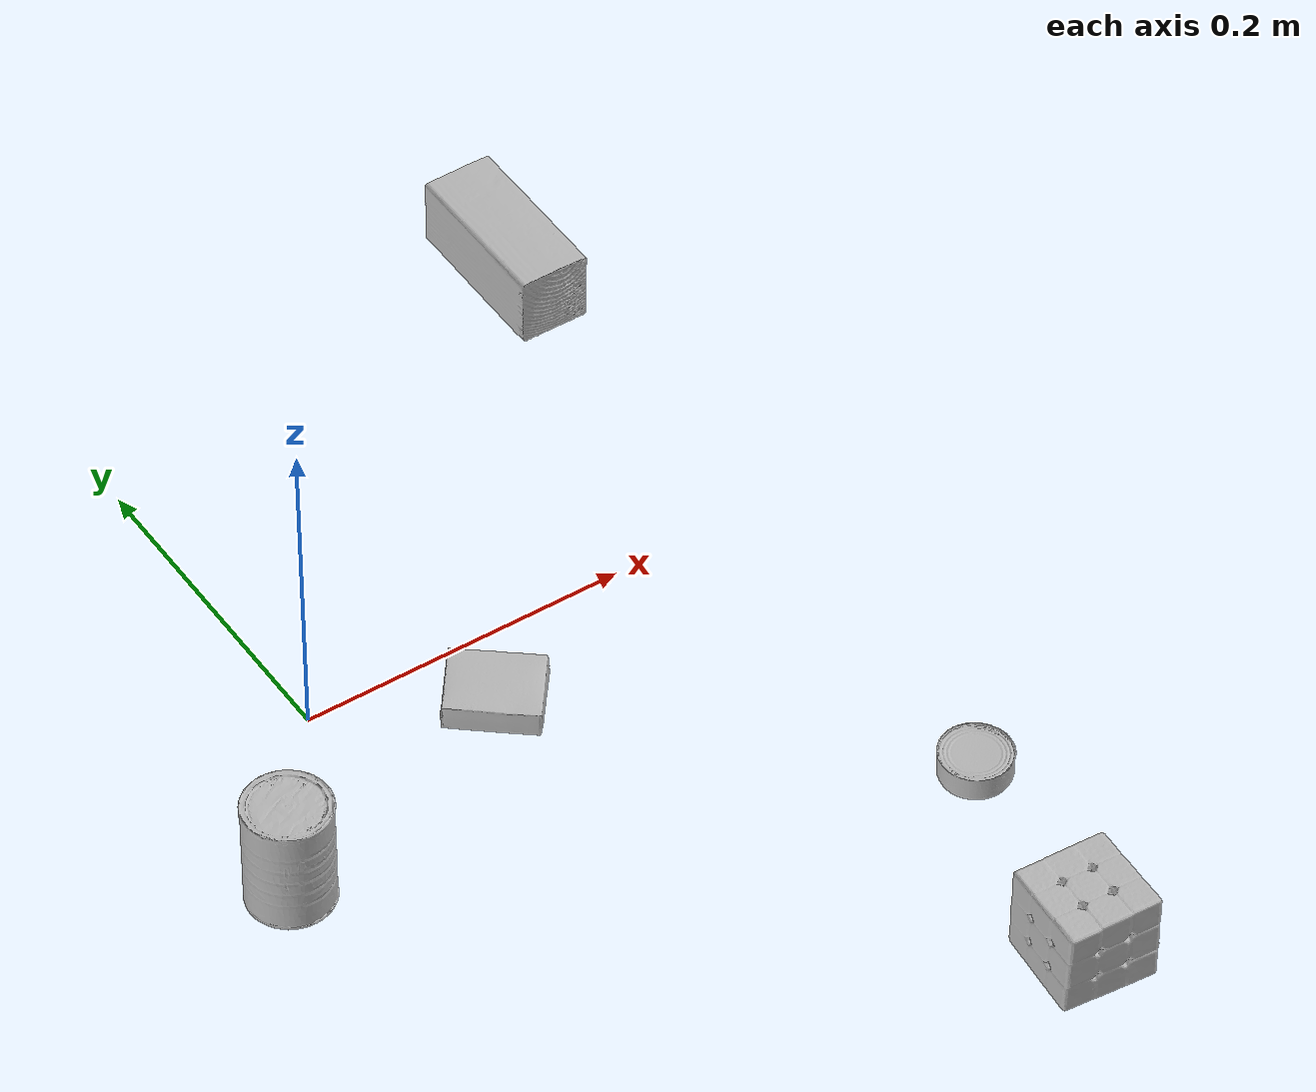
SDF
<sdf version="1.4">
  <world name="default">
    <light name="light1" type="point">
      <pose>0 0 1 0 0 0</pose>
      <diffuse>3 3 3 1</diffuse>
      <specular>3 3 3 1</specular>
    </light>
    <light name="light2" type="point">
      <pose>0 0.5 2 0 0 0</pose>
      <diffuse>1 1 1 1</diffuse>
      <specular>1 1 1 1</specular>
    </light>
    <light name="light3" type="point">
      <pose>0 0.5 2 0 0 0</pose>
      <diffuse>3 3 3 1</diffuse>
      <specular>3 3 3 1</specular>
    </light>
    <scene>
      <ambient>0.7 0.7 0.7</ambient>
    </scene>
    <model name="box1">
      <link name="link_box1">
        <collision name="default">
          <geometry>
            <mesh>
              <uri>model://rubiks_cube/collision_meshes/collision.obj</uri>
              <scale>1.0 1.0 1.0</scale>
            </mesh>
          </geometry>
          <surface>
            <friction>
              <ode>
                <mu>0.5</mu>
                <mu2>0.5</mu2>
              </ode>
            </friction>
          <contact>
        <ode>
            <max_vel>0</max_vel>
            <min_depth>0.0001</min_depth>
            <kp>1e8</kp>
        </ode>
    </contact></surface>
        </collision>
        <visual name="default">
          <geometry>
            <mesh>
              <uri>model://rubiks_cube/visual_meshes/visual.dae</uri>
              <scale>1.0 1.0 1.0</scale>
            </mesh>
          </geometry>
        </visual>
        <inertial>
          <mass>0.19534927606582642</mass>
          <pose>2.6721041649580002e-05 5.256967051536776e-05 -7.264316082000732e-06 -0.05467254413799041 -0.09813991388320625 -0.034457004790174134</pose>
          <inertia>
            <ixx>0.0001079436</ixx>
            <iyy>0.00010744019</iyy>
            <izz>0.000108838074</izz>
            <ixy>0</ixy>
            <ixz>0</ixz>
            <iyz>0</iyz>
          </inertia>
        </inertial>
      </link>
      <pose>0.24868658185005188 -0.36866581439971924 0.02867899090051651 -2.682033759012307e-06 -7.451522247878939e-07 -0.055767964717873375</pose>
    </model>
    <model name="box2">
      <link name="link_box2">
        <collision name="default">
          <geometry>
            <mesh>
              <uri>model://pudding_box/collision_meshes/collision.obj</uri>
              <scale>0.5 0.5 0.5</scale>
            </mesh>
          </geometry>
          <surface>
            <friction>
              <ode>
                <mu>0.5</mu>
                <mu2>0.5</mu2>
              </ode>
            </friction>
          <contact>
        <ode>
            <max_vel>0</max_vel>
            <min_depth>0.0001</min_depth>
            <kp>1e8</kp>
        </ode>
    </contact></surface>
        </collision>
        <visual name="default">
          <geometry>
            <mesh>
              <uri>model://pudding_box/visual_meshes/visual.dae</uri>
              <scale>0.5 0.5 0.5</scale>
            </mesh>
          </geometry>
        </visual>
        <inertial>
          <mass>0.04727919027209282</mass>
          <pose>0.00024474109522998333 0.00040339428232982755 -0.0002594413817860186 0.0052131013240192415 -0.0066037977924420415 0.020079828889419827</pose>
          <inertia>
            <ixx>1.3361672e-05</ixx>
            <iyy>8.9898285e-06</iyy>
            <izz>1.9732002e-05</izz>
            <ixy>0</ixy>
            <ixz>0</ixz>
            <iyz>0</iyz>
          </inertia>
        </inertial>
      </link>
      <pose>0.09061607718467712 -0.04589544236660004 0.009862905368208885 0.022348148878554325 -0.011391976299506125 0.9140558654138585</pose>
    </model>
    <model name="box3">
      <link name="link_box3">
        <collision name="default">
          <geometry>
            <mesh>
              <uri>model://wood_block/collision_meshes/collision.obj</uri>
              <scale>0.5 0.5 0.5</scale>
            </mesh>
          </geometry>
          <surface>
            <friction>
              <ode>
                <mu>0.5</mu>
                <mu2>0.5</mu2>
              </ode>
            </friction>
          <contact>
        <ode>
            <max_vel>0</max_vel>
            <min_depth>0.0001</min_depth>
            <kp>1e8</kp>
        </ode>
    </contact></surface>
        </collision>
        <visual name="default">
          <geometry>
            <mesh>
              <uri>model://wood_block/visual_meshes/visual.dae</uri>
              <scale>0.5 0.5 0.5</scale>
            </mesh>
          </geometry>
        </visual>
        <inertial>
          <mass>0.3041442632675171</mass>
          <pose>-2.9066577553749084e-06 -0.000285404734313488 0.00013204291462898254 -0.05220823380361383 -0.0051926957206686235 -0.0068613778665259926</pose>
          <inertia>
            <ixx>0.00010174775</ixx>
            <iyy>0.0003214212</iyy>
            <izz>0.0003202189</izz>
            <ixy>0</ixy>
            <ixz>0</ixz>
            <iyz>0</iyz>
          </inertia>
        </inertial>
      </link>
      <pose>0.27837491035461426 0.23265230655670166 0.022629264742136 -0.005208639704289288 0.005718726630643418 -1.5672616195537648</pose>
    </model>
    <model name="can1">
      <link name="link_can1">
        <collision name="default">
          <geometry>
            <mesh>
              <uri>model://master_chef_can/collision_meshes/collision.obj</uri>
              <scale>0.5 0.5 0.5</scale>
            </mesh>
          </geometry>
          <surface>
            <friction>
              <ode>
                <mu>0.5</mu>
                <mu2>0.5</mu2>
              </ode>
            </friction>
          <contact>
        <ode>
            <max_vel>0</max_vel>
            <min_depth>0.0001</min_depth>
            <kp>1e8</kp>
        </ode>
    </contact></surface>
        </collision>
        <visual name="default">
          <geometry>
            <mesh>
              <uri>model://master_chef_can/visual_meshes/visual.dae</uri>
              <scale>0.5 0.5 0.5</scale>
            </mesh>
          </geometry>
        </visual>
        <inertial>
          <mass>0.18719419836997986</mass>
          <pose>-4.661963976104744e-05 1.3926856468060578e-07 -5.0798327720258385e-05 -0.0017995099067415357 0.0006479319374111454 -0.6102582770449616</pose>
          <inertia>
            <ixx>0.0001098703</ixx>
            <iyy>0.00010906167</iyy>
            <izz>6.071174e-05</izz>
            <ixy>0</ixy>
            <ixz>0</ixz>
            <iyz>0</iyz>
          </inertia>
        </inertial>
      </link>
      <pose>-0.07401380687952042 -0.10169154405593872 0.03530199080705643 -1.4244610061229581e-06 -1.0692296945131791e-06 0.9165042860550798</pose>
    </model>
    <model name="can2">
      <link name="link_can2">
        <collision name="default">
          <geometry>
            <mesh>
              <uri>model://tuna_fish_can/collision_meshes/collision.obj</uri>
              <scale>0.5 0.5 0.5</scale>
            </mesh>
          </geometry>
          <surface>
            <friction>
              <ode>
                <mu>0.5</mu>
                <mu2>0.5</mu2>
              </ode>
            </friction>
          <contact>
        <ode>
            <max_vel>0</max_vel>
            <min_depth>0.0001</min_depth>
            <kp>1e8</kp>
        </ode>
    </contact></surface>
        </collision>
        <visual name="default">
          <geometry>
            <mesh>
              <uri>model://tuna_fish_can/visual_meshes/visual.dae</uri>
              <scale>0.5 0.5 0.5</scale>
            </mesh>
          </geometry>
        </visual>
        <inertial>
          <mass>0.011327341198921204</mass>
          <pose>-2.0361354472697712e-05 -7.256336175487377e-06 -0.0005269023822620511 -0.001794480782384504 0.00017159763230480823 0.24052991368062646</pose>
          <inertia>
            <ixx>1.5314733e-06</ixx>
            <iyy>1.52509e-06</iyy>
            <izz>2.6205691e-06</izz>
            <ixy>0</ixy>
            <ixz>0</ixz>
            <iyz>0</iyz>
          </inertia>
        </inertial>
      </link>
      <pose>0.27849724888801575 -0.230195552110672 0.00851999782025814 -1.3812349274749948e-08 1.5979873042026553e-08 2.1465127876921026</pose>
    </model>
  <physics type="ode">
      <max_contacts>50</max_contacts>
      <ode>
        <solver>
          <type>quick</type>
          <iters>75</iters>
        </solver>
        <constraints>
          <contact_max_correcting_vel>0</contact_max_correcting_vel>
          <contact_surface_layer>0</contact_surface_layer>
        </constraints>
      </ode>
    </physics></world>
</sdf>
